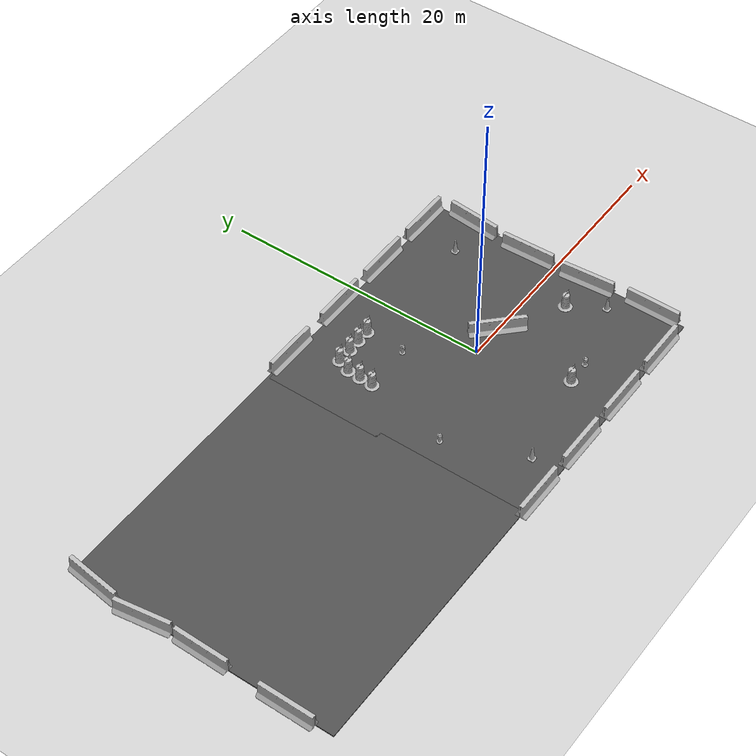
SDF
<sdf version="1.7">
 <world name="default">
  <light name="sun" type="directional">
   <pose>0 0 10 0 -0 0</pose>
   <diffuse>0.8 0.8 0.8 1</diffuse>
   <specular>0.2 0.2 0.2 1</specular>
   <attenuation>
    <range>1000</range>
    <constant>0.9</constant>
    <linear>0.01</linear>
    <quadratic>0.001</quadratic>
   </attenuation>
   <direction>-0.5 0.1 -0.9</direction>
   <spot><inner_angle>0</inner_angle><outer_angle>0</outer_angle><falloff>0</falloff></spot>
  </light>
  <model name="ground_plane">
   <static>1</static>
   <link name="link">
    <collision name="collision">
     <geometry><plane><normal>0 0 1</normal><size>100 100</size></plane></geometry>
     <surface><friction><ode><mu>100</mu><mu2>50</mu2></ode></friction></surface>
    </collision>
    <visual name="visual">
     <cast_shadows>0</cast_shadows>
     <geometry><plane><normal>0 0 1</normal><size>100 100</size></plane></geometry>
     <material>
      <script><uri>file://media/materials/scripts/gazebo.material</uri><name>Gazebo/Grey</name></script>
     </material>
    </visual>
    <velocity_decay><linear>0</linear><angular>0</angular></velocity_decay>
   </link>
  </model>
  <physics type="ode">
   <max_step_size>0.01</max_step_size>
   <real_time_factor>1</real_time_factor>
   <real_time_update_rate>100</real_time_update_rate>
  </physics>
  <scene><ambient>0.4 0.4 0.4 1</ambient><background>0.7 0.7 0.7 1</background><shadows>1</shadows></scene>
  <model name="jersey_barrier">
   <static>1</static>
   <link name="link">
    <visual name="visual">
     <geometry><mesh><uri>model://jersey_barrier/meshes/jersey_barrier.dae</uri></mesh></geometry>
    </visual>
    <collision name="upright">
     <pose>0 0 0.5715 0 -0 0</pose>
     <geometry><box><size>4.06542 0.3063 1.143</size></box></geometry>
    </collision>
    <collision name="base">
     <pose>0 0 0.032258 0 -0 0</pose>
     <geometry><box><size>4.06542 0.8107 0.064516</size></box></geometry>
    </collision>
    <collision name="base2">
     <pose>0 0 0.1 0 -0 0</pose>
     <geometry><box><size>4.06542 0.65 0.1</size></box></geometry>
    </collision>
    <collision name="base3">
     <pose>0 0 0.2 0 -0 0</pose>
     <geometry><box><size>4.06542 0.5 0.1</size></box></geometry>
    </collision>
    <collision name="left-angle">
     <pose>0 -0.224 0.2401 0.9 -0 0</pose>
     <geometry><box><size>4.06542 0.5 0.064516</size></box></geometry>
    </collision>
    <collision name="right-angle">
     <pose>0 0.224 0.2401 -0.9 0 0</pose>
     <geometry><box><size>4.06542 0.5 0.064516</size></box></geometry>
    </collision>
    <velocity_decay><linear>0</linear><angular>0</angular></velocity_decay>
   </link>
   <pose>-8 -10 0 0 -0 0</pose>
  </model>
  <model name="jersey_barrier_0">
   <static>1</static>
   <link name="link">
    <visual name="visual">
     <geometry><mesh><uri>model://jersey_barrier/meshes/jersey_barrier.dae</uri></mesh></geometry>
    </visual>
    <collision name="upright">
     <pose>0 0 0.5715 0 -0 0</pose>
     <geometry><box><size>4.06542 0.3063 1.143</size></box></geometry>
    </collision>
    <collision name="base">
     <pose>0 0 0.032258 0 -0 0</pose>
     <geometry><box><size>4.06542 0.8107 0.064516</size></box></geometry>
    </collision>
    <collision name="base2">
     <pose>0 0 0.1 0 -0 0</pose>
     <geometry><box><size>4.06542 0.65 0.1</size></box></geometry>
    </collision>
    <collision name="base3">
     <pose>0 0 0.2 0 -0 0</pose>
     <geometry><box><size>4.06542 0.5 0.1</size></box></geometry>
    </collision>
    <collision name="left-angle">
     <pose>0 -0.224 0.2401 0.9 -0 0</pose>
     <geometry><box><size>4.06542 0.5 0.064516</size></box></geometry>
    </collision>
    <collision name="right-angle">
     <pose>0 0.224 0.2401 -0.9 0 0</pose>
     <geometry><box><size>4.06542 0.5 0.064516</size></box></geometry>
    </collision>
    <velocity_decay><linear>0</linear><angular>0</angular></velocity_decay>
   </link>
   <pose>-3 -10 0 0 -0 0</pose>
  </model>
  <model name="jersey_barrier_1">
   <static>1</static>
   <link name="link">
    <visual name="visual">
     <geometry><mesh><uri>model://jersey_barrier/meshes/jersey_barrier.dae</uri></mesh></geometry>
    </visual>
    <collision name="upright">
     <pose>0 0 0.5715 0 -0 0</pose>
     <geometry><box><size>4.06542 0.3063 1.143</size></box></geometry>
    </collision>
    <collision name="base">
     <pose>0 0 0.032258 0 -0 0</pose>
     <geometry><box><size>4.06542 0.8107 0.064516</size></box></geometry>
    </collision>
    <collision name="base2">
     <pose>0 0 0.1 0 -0 0</pose>
     <geometry><box><size>4.06542 0.65 0.1</size></box></geometry>
    </collision>
    <collision name="base3">
     <pose>0 0 0.2 0 -0 0</pose>
     <geometry><box><size>4.06542 0.5 0.1</size></box></geometry>
    </collision>
    <collision name="left-angle">
     <pose>0 -0.224 0.2401 0.9 -0 0</pose>
     <geometry><box><size>4.06542 0.5 0.064516</size></box></geometry>
    </collision>
    <collision name="right-angle">
     <pose>0 0.224 0.2401 -0.9 0 0</pose>
     <geometry><box><size>4.06542 0.5 0.064516</size></box></geometry>
    </collision>
    <velocity_decay><linear>0</linear><angular>0</angular></velocity_decay>
   </link>
   <pose>2 -10 0 0 -0 0</pose>
  </model>
  <model name="jersey_barrier_2">
   <static>1</static>
   <link name="link">
    <visual name="visual">
     <geometry><mesh><uri>model://jersey_barrier/meshes/jersey_barrier.dae</uri></mesh></geometry>
    </visual>
    <collision name="upright">
     <pose>0 0 0.5715 0 -0 0</pose>
     <geometry><box><size>4.06542 0.3063 1.143</size></box></geometry>
    </collision>
    <collision name="base">
     <pose>0 0 0.032258 0 -0 0</pose>
     <geometry><box><size>4.06542 0.8107 0.064516</size></box></geometry>
    </collision>
    <collision name="base2">
     <pose>0 0 0.1 0 -0 0</pose>
     <geometry><box><size>4.06542 0.65 0.1</size></box></geometry>
    </collision>
    <collision name="base3">
     <pose>0 0 0.2 0 -0 0</pose>
     <geometry><box><size>4.06542 0.5 0.1</size></box></geometry>
    </collision>
    <collision name="left-angle">
     <pose>0 -0.224 0.2401 0.9 -0 0</pose>
     <geometry><box><size>4.06542 0.5 0.064516</size></box></geometry>
    </collision>
    <collision name="right-angle">
     <pose>0 0.224 0.2401 -0.9 0 0</pose>
     <geometry><box><size>4.06542 0.5 0.064516</size></box></geometry>
    </collision>
    <velocity_decay><linear>0</linear><angular>0</angular></velocity_decay>
   </link>
   <pose>7 -10 0 0 -0 0</pose>
  </model>
  <model name="jersey_barrier_3">
   <static>1</static>
   <link name="link">
    <visual name="visual">
     <geometry><mesh><uri>model://jersey_barrier/meshes/jersey_barrier.dae</uri></mesh></geometry>
    </visual>
    <collision name="upright">
     <pose>0 0 0.5715 0 -0 0</pose>
     <geometry><box><size>4.06542 0.3063 1.143</size></box></geometry>
    </collision>
    <collision name="base">
     <pose>0 0 0.032258 0 -0 0</pose>
     <geometry><box><size>4.06542 0.8107 0.064516</size></box></geometry>
    </collision>
    <collision name="base2">
     <pose>0 0 0.1 0 -0 0</pose>
     <geometry><box><size>4.06542 0.65 0.1</size></box></geometry>
    </collision>
    <collision name="base3">
     <pose>0 0 0.2 0 -0 0</pose>
     <geometry><box><size>4.06542 0.5 0.1</size></box></geometry>
    </collision>
    <collision name="left-angle">
     <pose>0 -0.224 0.2401 0.9 -0 0</pose>
     <geometry><box><size>4.06542 0.5 0.064516</size></box></geometry>
    </collision>
    <collision name="right-angle">
     <pose>0 0.224 0.2401 -0.9 0 0</pose>
     <geometry><box><size>4.06542 0.5 0.064516</size></box></geometry>
    </collision>
    <velocity_decay><linear>0</linear><angular>0</angular></velocity_decay>
   </link>
   <pose>-7.50675 10 0 0 -0 0</pose>
  </model>
  <model name="jersey_barrier_4">
   <static>1</static>
   <link name="link">
    <visual name="visual">
     <geometry><mesh><uri>model://jersey_barrier/meshes/jersey_barrier.dae</uri></mesh></geometry>
    </visual>
    <collision name="upright">
     <pose>0 0 0.5715 0 -0 0</pose>
     <geometry><box><size>4.06542 0.3063 1.143</size></box></geometry>
    </collision>
    <collision name="base">
     <pose>0 0 0.032258 0 -0 0</pose>
     <geometry><box><size>4.06542 0.8107 0.064516</size></box></geometry>
    </collision>
    <collision name="base2">
     <pose>0 0 0.1 0 -0 0</pose>
     <geometry><box><size>4.06542 0.65 0.1</size></box></geometry>
    </collision>
    <collision name="base3">
     <pose>0 0 0.2 0 -0 0</pose>
     <geometry><box><size>4.06542 0.5 0.1</size></box></geometry>
    </collision>
    <collision name="left-angle">
     <pose>0 -0.224 0.2401 0.9 -0 0</pose>
     <geometry><box><size>4.06542 0.5 0.064516</size></box></geometry>
    </collision>
    <collision name="right-angle">
     <pose>0 0.224 0.2401 -0.9 0 0</pose>
     <geometry><box><size>4.06542 0.5 0.064516</size></box></geometry>
    </collision>
    <velocity_decay><linear>0</linear><angular>0</angular></velocity_decay>
   </link>
   <pose>-2 10 0 0 -0 0</pose>
  </model>
  <model name="jersey_barrier_5">
   <static>1</static>
   <link name="link">
    <visual name="visual">
     <geometry><mesh><uri>model://jersey_barrier/meshes/jersey_barrier.dae</uri></mesh></geometry>
    </visual>
    <collision name="upright">
     <pose>0 0 0.5715 0 -0 0</pose>
     <geometry><box><size>4.06542 0.3063 1.143</size></box></geometry>
    </collision>
    <collision name="base">
     <pose>0 0 0.032258 0 -0 0</pose>
     <geometry><box><size>4.06542 0.8107 0.064516</size></box></geometry>
    </collision>
    <collision name="base2">
     <pose>0 0 0.1 0 -0 0</pose>
     <geometry><box><size>4.06542 0.65 0.1</size></box></geometry>
    </collision>
    <collision name="base3">
     <pose>0 0 0.2 0 -0 0</pose>
     <geometry><box><size>4.06542 0.5 0.1</size></box></geometry>
    </collision>
    <collision name="left-angle">
     <pose>0 -0.224 0.2401 0.9 -0 0</pose>
     <geometry><box><size>4.06542 0.5 0.064516</size></box></geometry>
    </collision>
    <collision name="right-angle">
     <pose>0 0.224 0.2401 -0.9 0 0</pose>
     <geometry><box><size>4.06542 0.5 0.064516</size></box></geometry>
    </collision>
    <velocity_decay><linear>0</linear><angular>0</angular></velocity_decay>
   </link>
   <pose>3 10 0 0 -0 0</pose>
  </model>
  <model name="jersey_barrier_6">
   <static>1</static>
   <link name="link">
    <visual name="visual">
     <geometry><mesh><uri>model://jersey_barrier/meshes/jersey_barrier.dae</uri></mesh></geometry>
    </visual>
    <collision name="upright">
     <pose>0 0 0.5715 0 -0 0</pose>
     <geometry><box><size>4.06542 0.3063 1.143</size></box></geometry>
    </collision>
    <collision name="base">
     <pose>0 0 0.032258 0 -0 0</pose>
     <geometry><box><size>4.06542 0.8107 0.064516</size></box></geometry>
    </collision>
    <collision name="base2">
     <pose>0 0 0.1 0 -0 0</pose>
     <geometry><box><size>4.06542 0.65 0.1</size></box></geometry>
    </collision>
    <collision name="base3">
     <pose>0 0 0.2 0 -0 0</pose>
     <geometry><box><size>4.06542 0.5 0.1</size></box></geometry>
    </collision>
    <collision name="left-angle">
     <pose>0 -0.224 0.2401 0.9 -0 0</pose>
     <geometry><box><size>4.06542 0.5 0.064516</size></box></geometry>
    </collision>
    <collision name="right-angle">
     <pose>0 0.224 0.2401 -0.9 0 0</pose>
     <geometry><box><size>4.06542 0.5 0.064516</size></box></geometry>
    </collision>
    <velocity_decay><linear>0</linear><angular>0</angular></velocity_decay>
   </link>
   <pose>8 10 0 0 -0 0</pose>
  </model>
  <model name="jersey_barrier_7">
   <static>1</static>
   <link name="link">
    <visual name="visual">
     <geometry><mesh><uri>model://jersey_barrier/meshes/jersey_barrier.dae</uri></mesh></geometry>
    </visual>
    <collision name="upright">
     <pose>0 0 0.5715 0 -0 0</pose>
     <geometry><box><size>4.06542 0.3063 1.143</size></box></geometry>
    </collision>
    <collision name="base">
     <pose>0 0 0.032258 0 -0 0</pose>
     <geometry><box><size>4.06542 0.8107 0.064516</size></box></geometry>
    </collision>
    <collision name="base2">
     <pose>0 0 0.1 0 -0 0</pose>
     <geometry><box><size>4.06542 0.65 0.1</size></box></geometry>
    </collision>
    <collision name="base3">
     <pose>0 0 0.2 0 -0 0</pose>
     <geometry><box><size>4.06542 0.5 0.1</size></box></geometry>
    </collision>
    <collision name="left-angle">
     <pose>0 -0.224 0.2401 0.9 -0 0</pose>
     <geometry><box><size>4.06542 0.5 0.064516</size></box></geometry>
    </collision>
    <collision name="right-angle">
     <pose>0 0.224 0.2401 -0.9 0 0</pose>
     <geometry><box><size>4.06542 0.5 0.064516</size></box></geometry>
    </collision>
    <velocity_decay><linear>0</linear><angular>0</angular></velocity_decay>
   </link>
   <pose>9.74902 -2.57759 0 0 -0 1.64</pose>
  </model>
  <model name="jersey_barrier_8">
   <static>1</static>
   <link name="link">
    <visual name="visual">
     <geometry><mesh><uri>model://jersey_barrier/meshes/jersey_barrier.dae</uri></mesh></geometry>
    </visual>
    <collision name="upright">
     <pose>0 0 0.5715 0 -0 0</pose>
     <geometry><box><size>4.06542 0.3063 1.143</size></box></geometry>
    </collision>
    <collision name="base">
     <pose>0 0 0.032258 0 -0 0</pose>
     <geometry><box><size>4.06542 0.8107 0.064516</size></box></geometry>
    </collision>
    <collision name="base2">
     <pose>0 0 0.1 0 -0 0</pose>
     <geometry><box><size>4.06542 0.65 0.1</size></box></geometry>
    </collision>
    <collision name="base3">
     <pose>0 0 0.2 0 -0 0</pose>
     <geometry><box><size>4.06542 0.5 0.1</size></box></geometry>
    </collision>
    <collision name="left-angle">
     <pose>0 -0.224 0.2401 0.9 -0 0</pose>
     <geometry><box><size>4.06542 0.5 0.064516</size></box></geometry>
    </collision>
    <collision name="right-angle">
     <pose>0 0.224 0.2401 -0.9 0 0</pose>
     <geometry><box><size>4.06542 0.5 0.064516</size></box></geometry>
    </collision>
    <velocity_decay><linear>0</linear><angular>0</angular></velocity_decay>
   </link>
   <pose>9.70141 2.24369 0 0 -0 1.6</pose>
  </model>
  <model name="jersey_barrier_9">
   <static>1</static>
   <link name="link">
    <visual name="visual">
     <geometry><mesh><uri>model://jersey_barrier/meshes/jersey_barrier.dae</uri></mesh></geometry>
    </visual>
    <collision name="upright">
     <pose>0 0 0.5715 0 -0 0</pose>
     <geometry><box><size>4.06542 0.3063 1.143</size></box></geometry>
    </collision>
    <collision name="base">
     <pose>0 0 0.032258 0 -0 0</pose>
     <geometry><box><size>4.06542 0.8107 0.064516</size></box></geometry>
    </collision>
    <collision name="base2">
     <pose>0 0 0.1 0 -0 0</pose>
     <geometry><box><size>4.06542 0.65 0.1</size></box></geometry>
    </collision>
    <collision name="base3">
     <pose>0 0 0.2 0 -0 0</pose>
     <geometry><box><size>4.06542 0.5 0.1</size></box></geometry>
    </collision>
    <collision name="left-angle">
     <pose>0 -0.224 0.2401 0.9 -0 0</pose>
     <geometry><box><size>4.06542 0.5 0.064516</size></box></geometry>
    </collision>
    <collision name="right-angle">
     <pose>0 0.224 0.2401 -0.9 0 0</pose>
     <geometry><box><size>4.06542 0.5 0.064516</size></box></geometry>
    </collision>
    <velocity_decay><linear>0</linear><angular>0</angular></velocity_decay>
   </link>
   <pose>-29.6143 -6.65992 0 0 0 -1.57277</pose>
  </model>
  <model name="jersey_barrier_10">
   <static>1</static>
   <link name="link">
    <visual name="visual">
     <geometry><mesh><uri>model://jersey_barrier/meshes/jersey_barrier.dae</uri></mesh></geometry>
    </visual>
    <collision name="upright">
     <pose>0 0 0.5715 0 -0 0</pose>
     <geometry><box><size>4.06542 0.3063 1.143</size></box></geometry>
    </collision>
    <collision name="base">
     <pose>0 0 0.032258 0 -0 0</pose>
     <geometry><box><size>4.06542 0.8107 0.064516</size></box></geometry>
    </collision>
    <collision name="base2">
     <pose>0 0 0.1 0 -0 0</pose>
     <geometry><box><size>4.06542 0.65 0.1</size></box></geometry>
    </collision>
    <collision name="base3">
     <pose>0 0 0.2 0 -0 0</pose>
     <geometry><box><size>4.06542 0.5 0.1</size></box></geometry>
    </collision>
    <collision name="left-angle">
     <pose>0 -0.224 0.2401 0.9 -0 0</pose>
     <geometry><box><size>4.06542 0.5 0.064516</size></box></geometry>
    </collision>
    <collision name="right-angle">
     <pose>0 0.224 0.2401 -0.9 0 0</pose>
     <geometry><box><size>4.06542 0.5 0.064516</size></box></geometry>
    </collision>
    <velocity_decay><linear>0</linear><angular>0</angular></velocity_decay>
   </link>
   <pose>-29.499 -0.219266 0 0 -0 1.56</pose>
  </model>
  <model name="jersey_barrier_11">
   <static>1</static>
   <link name="link">
    <visual name="visual">
     <geometry><mesh><uri>model://jersey_barrier/meshes/jersey_barrier.dae</uri></mesh></geometry>
    </visual>
    <collision name="upright">
     <pose>0 0 0.5715 0 -0 0</pose>
     <geometry><box><size>4.06542 0.3063 1.143</size></box></geometry>
    </collision>
    <collision name="base">
     <pose>0 0 0.032258 0 -0 0</pose>
     <geometry><box><size>4.06542 0.8107 0.064516</size></box></geometry>
    </collision>
    <collision name="base2">
     <pose>0 0 0.1 0 -0 0</pose>
     <geometry><box><size>4.06542 0.65 0.1</size></box></geometry>
    </collision>
    <collision name="base3">
     <pose>0 0 0.2 0 -0 0</pose>
     <geometry><box><size>4.06542 0.5 0.1</size></box></geometry>
    </collision>
    <collision name="left-angle">
     <pose>0 -0.224 0.2401 0.9 -0 0</pose>
     <geometry><box><size>4.06542 0.5 0.064516</size></box></geometry>
    </collision>
    <collision name="right-angle">
     <pose>0 0.224 0.2401 -0.9 0 0</pose>
     <geometry><box><size>4.06542 0.5 0.064516</size></box></geometry>
    </collision>
    <velocity_decay><linear>0</linear><angular>0</angular></velocity_decay>
   </link>
   <pose>-29.6769 4.13143 0 0 -0 1.72</pose>
  </model>
  <model name="jersey_barrier_12">
   <static>1</static>
   <link name="link">
    <visual name="visual">
     <geometry><mesh><uri>model://jersey_barrier/meshes/jersey_barrier.dae</uri></mesh></geometry>
    </visual>
    <collision name="upright">
     <pose>0 0 0.5715 0 -0 0</pose>
     <geometry><box><size>4.06542 0.3063 1.143</size></box></geometry>
    </collision>
    <collision name="base">
     <pose>0 0 0.032258 0 -0 0</pose>
     <geometry><box><size>4.06542 0.8107 0.064516</size></box></geometry>
    </collision>
    <collision name="base2">
     <pose>0 0 0.1 0 -0 0</pose>
     <geometry><box><size>4.06542 0.65 0.1</size></box></geometry>
    </collision>
    <collision name="base3">
     <pose>0 0 0.2 0 -0 0</pose>
     <geometry><box><size>4.06542 0.5 0.1</size></box></geometry>
    </collision>
    <collision name="left-angle">
     <pose>0 -0.224 0.2401 0.9 -0 0</pose>
     <geometry><box><size>4.06542 0.5 0.064516</size></box></geometry>
    </collision>
    <collision name="right-angle">
     <pose>0 0.224 0.2401 -0.9 0 0</pose>
     <geometry><box><size>4.06542 0.5 0.064516</size></box></geometry>
    </collision>
    <velocity_decay><linear>0</linear><angular>0</angular></velocity_decay>
   </link>
   <pose>10.0879 -7.62159 0 0 -0 1.56</pose>
  </model>
  <model name="jersey_barrier_13">
   <static>1</static>
   <link name="link">
    <visual name="visual">
     <geometry><mesh><uri>model://jersey_barrier/meshes/jersey_barrier.dae</uri></mesh></geometry>
    </visual>
    <collision name="upright">
     <pose>0 0 0.5715 0 -0 0</pose>
     <geometry><box><size>4.06542 0.3063 1.143</size></box></geometry>
    </collision>
    <collision name="base">
     <pose>0 0 0.032258 0 -0 0</pose>
     <geometry><box><size>4.06542 0.8107 0.064516</size></box></geometry>
    </collision>
    <collision name="base2">
     <pose>0 0 0.1 0 -0 0</pose>
     <geometry><box><size>4.06542 0.65 0.1</size></box></geometry>
    </collision>
    <collision name="base3">
     <pose>0 0 0.2 0 -0 0</pose>
     <geometry><box><size>4.06542 0.5 0.1</size></box></geometry>
    </collision>
    <collision name="left-angle">
     <pose>0 -0.224 0.2401 0.9 -0 0</pose>
     <geometry><box><size>4.06542 0.5 0.064516</size></box></geometry>
    </collision>
    <collision name="right-angle">
     <pose>0 0.224 0.2401 -0.9 0 0</pose>
     <geometry><box><size>4.06542 0.5 0.064516</size></box></geometry>
    </collision>
    <velocity_decay><linear>0</linear><angular>0</angular></velocity_decay>
   </link>
   <pose>10 7 0 0 -0 1.48</pose>
  </model>
  <model name="jersey_barrier_14">
   <static>1</static>
   <link name="link">
    <visual name="visual">
     <geometry><mesh><uri>model://jersey_barrier/meshes/jersey_barrier.dae</uri></mesh></geometry>
    </visual>
    <collision name="upright">
     <pose>0 0 0.5715 0 -0 0</pose>
     <geometry><box><size>4.06542 0.3063 1.143</size></box></geometry>
    </collision>
    <collision name="base">
     <pose>0 0 0.032258 0 -0 0</pose>
     <geometry><box><size>4.06542 0.8107 0.064516</size></box></geometry>
    </collision>
    <collision name="base2">
     <pose>0 0 0.1 0 -0 0</pose>
     <geometry><box><size>4.06542 0.65 0.1</size></box></geometry>
    </collision>
    <collision name="base3">
     <pose>0 0 0.2 0 -0 0</pose>
     <geometry><box><size>4.06542 0.5 0.1</size></box></geometry>
    </collision>
    <collision name="left-angle">
     <pose>0 -0.224 0.2401 0.9 -0 0</pose>
     <geometry><box><size>4.06542 0.5 0.064516</size></box></geometry>
    </collision>
    <collision name="right-angle">
     <pose>0 0.224 0.2401 -0.9 0 0</pose>
     <geometry><box><size>4.06542 0.5 0.064516</size></box></geometry>
    </collision>
    <velocity_decay><linear>0</linear><angular>0</angular></velocity_decay>
   </link>
   <pose>-29.3885 8.26675 0 0 -0 1.44</pose>
  </model>
  <model name="fire_hydrant">
   <static>1</static>
   <link name="link">
    <collision name="collision">
     <geometry><mesh><uri>model://fire_hydrant/meshes/fire_hydrant.dae</uri></mesh></geometry>
    </collision>
    <visual name="visual">
     <geometry><mesh><uri>model://fire_hydrant/meshes/fire_hydrant.dae</uri></mesh></geometry>
    </visual>
    <velocity_decay><linear>0</linear><angular>0</angular></velocity_decay>
   </link>
   <pose>3.18024 -6.51118 0 0 -0 0</pose>
  </model>
  <model name="fire_hydrant_0">
   <static>1</static>
   <link name="link">
    <collision name="collision">
     <geometry><mesh><uri>model://fire_hydrant/meshes/fire_hydrant.dae</uri></mesh></geometry>
    </collision>
    <visual name="visual">
     <geometry><mesh><uri>model://fire_hydrant/meshes/fire_hydrant.dae</uri></mesh></geometry>
    </visual>
    <velocity_decay><linear>0</linear><angular>0</angular></velocity_decay>
   </link>
   <pose>-3 4 0 0 -0 0</pose>
  </model>
  <model name="fire_hydrant_1">
   <static>1</static>
   <link name="link">
    <collision name="collision">
     <geometry><mesh><uri>model://fire_hydrant/meshes/fire_hydrant.dae</uri></mesh></geometry>
    </collision>
    <visual name="visual">
     <geometry><mesh><uri>model://fire_hydrant/meshes/fire_hydrant.dae</uri></mesh></geometry>
    </visual>
    <velocity_decay><linear>0</linear><angular>0</angular></velocity_decay>
   </link>
   <pose>-7.90686 -2.41363 0 0 -0 0</pose>
  </model>
  <model name="jersey_barrier_15">
   <static>1</static>
   <link name="link">
    <visual name="visual">
     <geometry><mesh><uri>model://jersey_barrier/meshes/jersey_barrier.dae</uri></mesh></geometry>
    </visual>
    <collision name="upright">
     <pose>0 0 0.5715 0 -0 0</pose>
     <geometry><box><size>4.06542 0.3063 1.143</size></box></geometry>
    </collision>
    <collision name="base">
     <pose>0 0 0.032258 0 -0 0</pose>
     <geometry><box><size>4.06542 0.8107 0.064516</size></box></geometry>
    </collision>
    <collision name="base2">
     <pose>0 0 0.1 0 -0 0</pose>
     <geometry><box><size>4.06542 0.65 0.1</size></box></geometry>
    </collision>
    <collision name="base3">
     <pose>0 0 0.2 0 -0 0</pose>
     <geometry><box><size>4.06542 0.5 0.1</size></box></geometry>
    </collision>
    <collision name="left-angle">
     <pose>0 -0.224 0.2401 0.9 -0 0</pose>
     <geometry><box><size>4.06542 0.5 0.064516</size></box></geometry>
    </collision>
    <collision name="right-angle">
     <pose>0 0.224 0.2401 -0.9 0 0</pose>
     <geometry><box><size>4.06542 0.5 0.064516</size></box></geometry>
    </collision>
    <velocity_decay><linear>0</linear><angular>0</angular></velocity_decay>
   </link>
   <pose>2.45495 0 0 0 -0 2.36</pose>
  </model>
  <model name="Construction Cone">
   <link name="link">
    <collision name="collision">
     <geometry>
      <mesh><scale>10 10 10</scale><uri>model://construction_cone/meshes/construction_cone.dae</uri></mesh>
     </geometry>
    </collision>
    <visual name="visual">
     <geometry>
      <mesh><scale>10 10 10</scale><uri>model://construction_cone/meshes/construction_cone.dae</uri></mesh>
     </geometry>
    </visual>
    <velocity_decay><linear>0</linear><angular>0</angular></velocity_decay>
    <inertial>
     <inertia><ixx>1</ixx><ixy>0</ixy><ixz>0</ixz><iyy>1</iyy><iyz>0</iyz><izz>1</izz></inertia>
     <mass>1</mass>
    </inertial>
   </link>
   <pose>-5.59121 -8 0.04996 -3e-06 0.000177 4e-06</pose>
   <static>0</static>
  </model>
  <model name="Construction Barrel">
   <link name="link">
    <inertial>
     <pose>0 0 0.4 0 -0 0</pose>
     <mass>500</mass>
     <inertia><ixx>51.2096</ixx><iyy>51.2096</iyy><izz>25</izz><ixy>0</ixy><ixz>0</ixz><iyz>0</iyz></inertia>
    </inertial>
    <collision name="collision">
     <geometry><mesh><uri>model://construction_barrel/meshes/construction_barrel.dae</uri></mesh></geometry>
    </collision>
    <visual name="visual">
     <geometry><mesh><uri>model://construction_barrel/meshes/construction_barrel.dae</uri></mesh></geometry>
    </visual>
    <velocity_decay><linear>0</linear><angular>0</angular></velocity_decay>
   </link>
   <pose>7.0001 -2.54622 0.049896 -0.000205 -0.000387 0.000221</pose>
   <static>0</static>
  </model>
  <model name="Construction Cone_0">
   <link name="link">
    <collision name="collision">
     <geometry>
      <mesh><scale>10 10 10</scale><uri>model://construction_cone/meshes/construction_cone.dae</uri></mesh>
     </geometry>
    </collision>
    <visual name="visual">
     <geometry>
      <mesh><scale>10 10 10</scale><uri>model://construction_cone/meshes/construction_cone.dae</uri></mesh>
     </geometry>
    </visual>
    <velocity_decay><linear>0</linear><angular>0</angular></velocity_decay>
    <inertial>
     <inertia><ixx>1</ixx><ixy>0</ixy><ixz>0</ixz><iyy>1</iyy><iyz>0</iyz><izz>1</izz></inertia>
     <mass>1</mass>
    </inertial>
   </link>
   <pose>6.99685 6.55732 0.04996 -3e-06 0.000177 -0.007008</pose>
   <static>0</static>
  </model>
  <model name="Construction Barrel_0">
   <link name="link">
    <inertial>
     <pose>0 0 0.4 0 -0 0</pose>
     <mass>500</mass>
     <inertia><ixx>51.2096</ixx><iyy>51.2096</iyy><izz>25</izz><ixy>0</ixy><ixz>0</ixz><iyz>0</iyz></inertia>
    </inertial>
    <collision name="collision">
     <geometry><mesh><uri>model://construction_barrel/meshes/construction_barrel.dae</uri></mesh></geometry>
    </collision>
    <visual name="visual">
     <geometry><mesh><uri>model://construction_barrel/meshes/construction_barrel.dae</uri></mesh></geometry>
    </visual>
    <velocity_decay><linear>0</linear><angular>0</angular></velocity_decay>
   </link>
   <pose>1.45182 -6.51115 0.049917 0.000376 -2.9e-05 -0.000144</pose>
   <static>0</static>
  </model>
  <model name="asphalt_plane">
   <static>1</static>
   <link name="link">
    <collision name="collision"><geometry><box><size>20 20 0.1</size></box></geometry></collision>
    <visual name="visual">
     <cast_shadows>0</cast_shadows>
     <geometry><box><size>20 20 0.1</size></box></geometry>
     <material>
      <script>
       <uri>model://asphalt_plane/materials/scripts</uri>
       <uri>model://asphalt_plane/materials/textures</uri>
       <name>vrc/asphalt</name>
      </script>
     </material>
    </visual>
    <velocity_decay><linear>0</linear><angular>0</angular></velocity_decay>
   </link>
   <pose>0.076733 -0.110379 0 0 -0 0</pose>
  </model>
  <model name="Construction Barrel_1">
   <link name="link">
    <inertial>
     <pose>0 0 0.4 0 -0 0</pose>
     <mass>500</mass>
     <inertia><ixx>51.2096</ixx><iyy>51.2096</iyy><izz>25</izz><ixy>0</ixy><ixz>0</ixz><iyz>0</iyz></inertia>
    </inertial>
    <collision name="collision">
     <geometry><mesh><uri>model://construction_barrel/meshes/construction_barrel.dae</uri></mesh></geometry>
    </collision>
    <visual name="visual">
     <geometry><mesh><uri>model://construction_barrel/meshes/construction_barrel.dae</uri></mesh></geometry>
    </visual>
    <velocity_decay><linear>0</linear><angular>0</angular></velocity_decay>
   </link>
   <pose>-6.50476 3.98274 0.04988 -0.000235 -0.000417 -0.009783</pose>
   <static>0</static>
  </model>
  <model name="Construction Barrel_2">
   <link name="link">
    <inertial>
     <pose>0 0 0.4 0 -0 0</pose>
     <mass>500</mass>
     <inertia><ixx>51.2096</ixx><iyy>51.2096</iyy><izz>25</izz><ixy>0</ixy><ixz>0</ixz><iyz>0</iyz></inertia>
    </inertial>
    <collision name="collision">
     <geometry><mesh><uri>model://construction_barrel/meshes/construction_barrel.dae</uri></mesh></geometry>
    </collision>
    <visual name="visual">
     <geometry><mesh><uri>model://construction_barrel/meshes/construction_barrel.dae</uri></mesh></geometry>
    </visual>
    <velocity_decay><linear>0</linear><angular>0</angular></velocity_decay>
   </link>
   <pose>-6.45059 4.99652 0.049883 0.000472 -8e-06 0.064842</pose>
   <static>0</static>
  </model>
  <model name="Construction Barrel_3">
   <link name="link">
    <inertial>
     <pose>0 0 0.4 0 -0 0</pose>
     <mass>500</mass>
     <inertia><ixx>51.2096</ixx><iyy>51.2096</iyy><izz>25</izz><ixy>0</ixy><ixz>0</ixz><iyz>0</iyz></inertia>
    </inertial>
    <collision name="collision">
     <geometry><mesh><uri>model://construction_barrel/meshes/construction_barrel.dae</uri></mesh></geometry>
    </collision>
    <visual name="visual">
     <geometry><mesh><uri>model://construction_barrel/meshes/construction_barrel.dae</uri></mesh></geometry>
    </visual>
    <velocity_decay><linear>0</linear><angular>0</angular></velocity_decay>
   </link>
   <pose>-6.40167 6.01127 0.049928 0.000333 5.5e-05 -0.120765</pose>
   <static>0</static>
  </model>
  <model name="Construction Barrel_4">
   <link name="link">
    <inertial>
     <pose>0 0 0.4 0 -0 0</pose>
     <mass>500</mass>
     <inertia><ixx>51.2096</ixx><iyy>51.2096</iyy><izz>25</izz><ixy>0</ixy><ixz>0</ixz><iyz>0</iyz></inertia>
    </inertial>
    <collision name="collision">
     <geometry><mesh><uri>model://construction_barrel/meshes/construction_barrel.dae</uri></mesh></geometry>
    </collision>
    <visual name="visual">
     <geometry><mesh><uri>model://construction_barrel/meshes/construction_barrel.dae</uri></mesh></geometry>
    </visual>
    <velocity_decay><linear>0</linear><angular>0</angular></velocity_decay>
   </link>
   <pose>-6.00629 7.00893 0.049913 -0.00017 -0.000347 -0.049747</pose>
   <static>0</static>
  </model>
  <model name="Construction Barrel_5">
   <link name="link">
    <inertial>
     <pose>0 0 0.4 0 -0 0</pose>
     <mass>500</mass>
     <inertia><ixx>51.2096</ixx><iyy>51.2096</iyy><izz>25</izz><ixy>0</ixy><ixz>0</ixz><iyz>0</iyz></inertia>
    </inertial>
    <collision name="collision">
     <geometry><mesh><uri>model://construction_barrel/meshes/construction_barrel.dae</uri></mesh></geometry>
    </collision>
    <visual name="visual">
     <geometry><mesh><uri>model://construction_barrel/meshes/construction_barrel.dae</uri></mesh></geometry>
    </visual>
    <velocity_decay><linear>0</linear><angular>0</angular></velocity_decay>
   </link>
   <pose>-4.87591 7.00789 0.049904 3e-06 -0.000387 0.145961</pose>
   <static>0</static>
  </model>
  <model name="Construction Barrel_6">
   <link name="link">
    <inertial>
     <pose>0 0 0.4 0 -0 0</pose>
     <mass>500</mass>
     <inertia><ixx>51.2096</ixx><iyy>51.2096</iyy><izz>25</izz><ixy>0</ixy><ixz>0</ixz><iyz>0</iyz></inertia>
    </inertial>
    <collision name="collision">
     <geometry><mesh><uri>model://construction_barrel/meshes/construction_barrel.dae</uri></mesh></geometry>
    </collision>
    <visual name="visual">
     <geometry><mesh><uri>model://construction_barrel/meshes/construction_barrel.dae</uri></mesh></geometry>
    </visual>
    <velocity_decay><linear>0</linear><angular>0</angular></velocity_decay>
   </link>
   <pose>-3.86099 7.04533 0.049959 0.000227 4e-05 0.035928</pose>
   <static>0</static>
  </model>
  <model name="Construction Barrel_7">
   <link name="link">
    <inertial>
     <pose>0 0 0.4 0 -0 0</pose>
     <mass>500</mass>
     <inertia><ixx>51.2096</ixx><iyy>51.2096</iyy><izz>25</izz><ixy>0</ixy><ixz>0</ixz><iyz>0</iyz></inertia>
    </inertial>
    <collision name="collision">
     <geometry><mesh><uri>model://construction_barrel/meshes/construction_barrel.dae</uri></mesh></geometry>
    </collision>
    <visual name="visual">
     <geometry><mesh><uri>model://construction_barrel/meshes/construction_barrel.dae</uri></mesh></geometry>
    </visual>
    <velocity_decay><linear>0</linear><angular>0</angular></velocity_decay>
   </link>
   <pose>-2.84383 7.03473 0.049903 0.000416 -2.2e-05 0.003419</pose>
   <static>0</static>
  </model>
  <model name="Construction Cone_1">
   <link name="link">
    <collision name="collision">
     <geometry>
      <mesh><scale>10 10 10</scale><uri>model://construction_cone/meshes/construction_cone.dae</uri></mesh>
     </geometry>
    </collision>
    <visual name="visual">
     <geometry>
      <mesh><scale>10 10 10</scale><uri>model://construction_cone/meshes/construction_cone.dae</uri></mesh>
     </geometry>
    </visual>
    <velocity_decay><linear>0</linear><angular>0</angular></velocity_decay>
    <inertial>
     <inertia><ixx>1</ixx><ixy>0</ixy><ixz>0</ixz><iyy>1</iyy><iyz>0</iyz><izz>1</izz></inertia>
     <mass>1</mass>
    </inertial>
   </link>
   <pose>8.42887 -5 0.04996 -3e-06 0.000177 4e-06</pose>
   <static>0</static>
  </model>
  <gravity>0 0 -9.8</gravity>
  <magnetic_field>6e-06 2.3e-05 -4.2e-05</magnetic_field>
  <atmosphere type="adiabatic"/>
  <spherical_coordinates>
   <surface_model>EARTH_WGS84</surface_model>
   <latitude_deg>0</latitude_deg>
   <longitude_deg>0</longitude_deg>
   <elevation>0</elevation>
   <heading_deg>0</heading_deg>
  </spherical_coordinates>
  <model name="asphalt_plane_clone">
   <static>1</static>
   <link name="link">
    <collision name="collision"><geometry><box><size>20 20 0.1</size></box></geometry></collision>
    <visual name="visual">
     <cast_shadows>0</cast_shadows>
     <geometry><box><size>20 20 0.1</size></box></geometry>
     <material>
      <script>
       <uri>model://asphalt_plane/materials/scripts</uri>
       <uri>model://asphalt_plane/materials/textures</uri>
       <name>vrc/asphalt</name>
      </script>
     </material>
    </visual>
    <velocity_decay><linear>0</linear><angular>0</angular></velocity_decay>
   </link>
   <pose>-19.473 0.053246 0 0 -0 0</pose>
  </model>
 </world>
</sdf>
